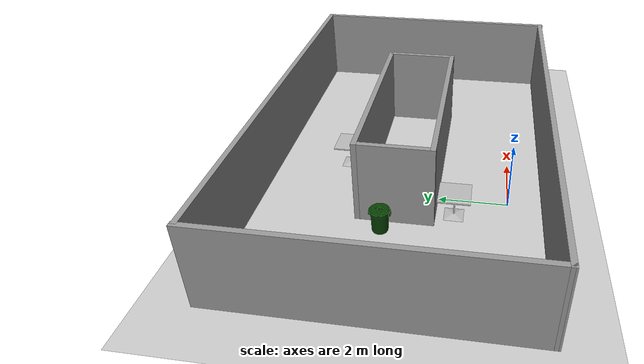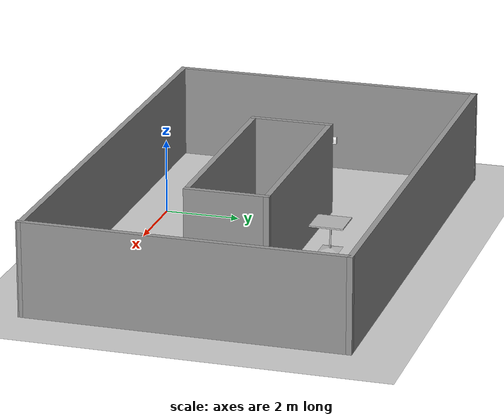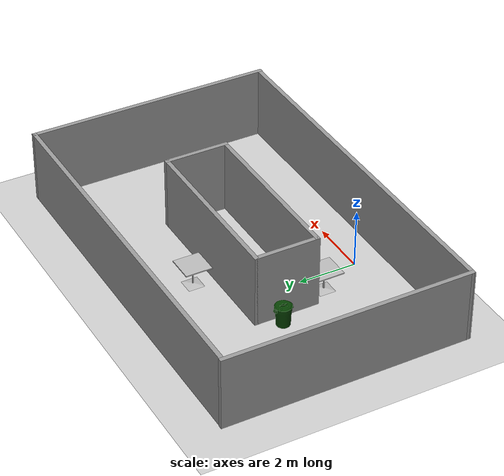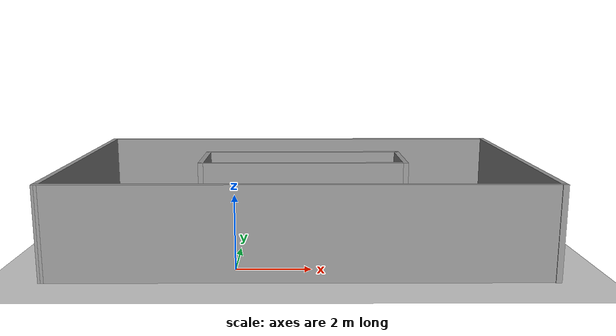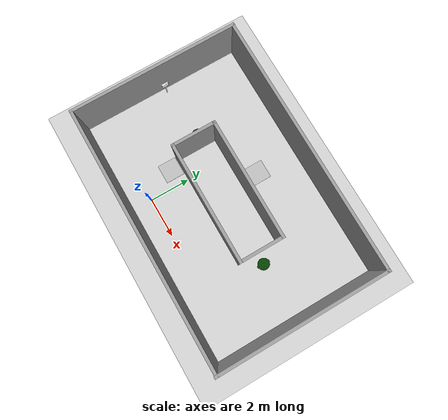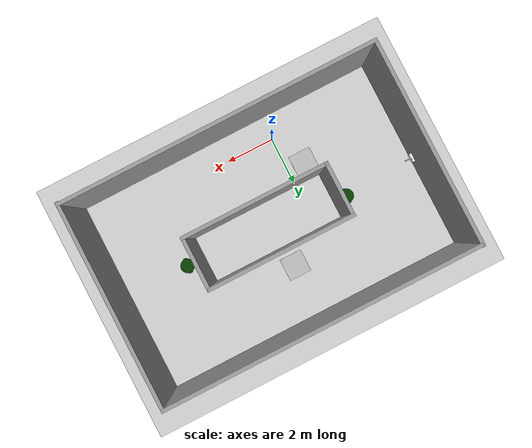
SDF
<sdf version="1.6">
 <world name="default">
  <light name="sun" type="directional">
   <pose>0 0 10 0 -0 0</pose>
   <diffuse>0.8 0.8 0.8 1</diffuse>
   <specular>0.2 0.2 0.2 1</specular>
   <attenuation>
    <range>1000</range>
    <constant>0.9</constant>
    <linear>0.01</linear>
    <quadratic>0.001</quadratic>
   </attenuation>
   <direction>-0.5 0.1 -0.9</direction>
  </light>
  <model name="ground_plane">
   <static>1</static>
   <link name="link">
    <collision name="collision">
     <geometry><plane><normal>0 0 1</normal><size>100 100</size></plane></geometry>
     <surface>
      <contact><collide_bitmask>65535</collide_bitmask></contact>
      <friction><ode><mu>100</mu><mu2>50</mu2></ode></friction>
     </surface>
    </collision>
    <visual name="visual">
     <cast_shadows>0</cast_shadows>
     <geometry><plane><normal>0 0 1</normal><size>100 100</size></plane></geometry>
     <material>
      <script><uri>file://media/materials/scripts/gazebo.material</uri><name>Gazebo/Grey</name></script>
     </material>
    </visual>
   </link>
  </model>
  <gravity>0 0 -9.8</gravity>
  <magnetic_field>6e-06 2.3e-05 -4.2e-05</magnetic_field>
  <atmosphere type="adiabatic"/>
  <physics name="default_physics" default="0" type="ode">
   <max_step_size>0.001</max_step_size>
   <real_time_factor>1</real_time_factor>
   <real_time_update_rate>1000</real_time_update_rate>
  </physics>
  <scene><ambient>0.4 0.4 0.4 1</ambient><background>0.7 0.7 0.7 1</background><shadows>1</shadows></scene>
  <spherical_coordinates>
   <surface_model>EARTH_WGS84</surface_model>
   <latitude_deg>0</latitude_deg>
   <longitude_deg>0</longitude_deg>
   <elevation>0</elevation>
   <heading_deg>0</heading_deg>
  </spherical_coordinates>
  <model name="okay">
   <pose>1.68904 3.10716 0 0 -0 0</pose>
   <link name="Wall_19">
    <collision name="Wall_19_Collision">
     <geometry><box><size>13.0776 0.15 2.5</size></box></geometry>
     <pose>0 0 1.25 0 -0 0</pose>
    </collision>
    <visual name="Wall_19_Visual">
     <pose>0 0 1.25 0 -0 0</pose>
     <geometry><box><size>13.0776 0.15 2.5</size></box></geometry>
     <material>
      <script><uri>file://media/materials/scripts/gazebo.material</uri><name>Gazebo/Grey</name></script>
      <ambient>1 1 1 1</ambient>
     </material>
     <meta><layer>0</layer></meta>
    </visual>
    <pose>0 -4.1597 0 0 -0 0.001178</pose>
   </link>
   <link name="Wall_21">
    <collision name="Wall_21_Collision">
     <geometry><box><size>6 0.15 2.5</size></box></geometry>
     <pose>0 0 1.25 0 -0 0</pose>
    </collision>
    <visual name="Wall_21_Visual">
     <pose>0 0 1.25 0 -0 0</pose>
     <geometry><box><size>6 0.15 2.5</size></box></geometry>
     <material>
      <script><uri>file://media/materials/scripts/gazebo.material</uri><name>Gazebo/Grey</name></script>
      <ambient>1 1 1 1</ambient>
     </material>
     <meta><layer>0</layer></meta>
    </visual>
    <pose>0.104244 -1.01067 0 0 -0 0</pose>
   </link>
   <link name="Wall_23">
    <collision name="Wall_23_Collision">
     <geometry><box><size>8.5 0.15 2.5</size></box></geometry>
     <pose>0 0 1.25 0 -0 0</pose>
    </collision>
    <visual name="Wall_23_Visual">
     <pose>0 0 1.25 0 -0 0</pose>
     <geometry><box><size>8.5 0.15 2.5</size></box></geometry>
     <material>
      <script><uri>file://media/materials/scripts/gazebo.material</uri><name>Gazebo/Grey</name></script>
      <ambient>1 1 1 1</ambient>
     </material>
     <meta><layer>0</layer></meta>
    </visual>
    <pose>6.46375 -0.007678 0 0 -0 1.5708</pose>
   </link>
   <link name="Wall_25">
    <collision name="Wall_25_Collision">
     <geometry><box><size>8.5 0.15 2.5</size></box></geometry>
     <pose>0 0 1.25 0 -0 0</pose>
    </collision>
    <visual name="Wall_25_Visual">
     <pose>0 0 1.25 0 -0 0</pose>
     <geometry><box><size>8.5 0.15 2.5</size></box></geometry>
     <material>
      <script><uri>file://media/materials/scripts/gazebo.material</uri><name>Gazebo/Grey</name></script>
      <ambient>1 1 1 1</ambient>
     </material>
     <meta><layer>0</layer></meta>
    </visual>
    <pose>-6.46375 0.007678 0 0 -0 -1.5708</pose>
   </link>
   <link name="Wall_27">
    <collision name="Wall_27_Collision">
     <geometry><box><size>2.25 0.15 2.5</size></box></geometry>
     <pose>0 0 1.25 0 -0 0</pose>
    </collision>
    <visual name="Wall_27_Visual">
     <pose>0 0 1.25 0 -0 0</pose>
     <geometry><box><size>2.25 0.15 2.5</size></box></geometry>
     <material>
      <script><uri>file://media/materials/scripts/gazebo.material</uri><name>Gazebo/Grey</name></script>
      <ambient>1 1 1 1</ambient>
     </material>
     <meta><layer>0</layer></meta>
    </visual>
    <pose>3.02924 0.039325 0 0 -0 1.5708</pose>
   </link>
   <link name="Wall_28">
    <collision name="Wall_28_Collision">
     <geometry><box><size>6 0.15 2.5</size></box></geometry>
     <pose>0 0 1.25 0 -0 0</pose>
    </collision>
    <visual name="Wall_28_Visual">
     <pose>0 0 1.25 0 -0 0</pose>
     <geometry><box><size>6 0.15 2.5</size></box></geometry>
     <material>
      <script><uri>file://media/materials/scripts/gazebo.material</uri><name>Gazebo/Grey</name></script>
      <ambient>1 1 1 1</ambient>
     </material>
     <meta><layer>0</layer></meta>
    </visual>
    <pose>0.104244 1.08933 0 0 -0 3.14159</pose>
   </link>
   <link name="Wall_29">
    <collision name="Wall_29_Collision">
     <geometry><box><size>2.25 0.15 2.5</size></box></geometry>
     <pose>0 0 1.25 0 -0 0</pose>
    </collision>
    <visual name="Wall_29_Visual">
     <pose>0 0 1.25 0 -0 0</pose>
     <geometry><box><size>2.25 0.15 2.5</size></box></geometry>
     <material>
      <script><uri>file://media/materials/scripts/gazebo.material</uri><name>Gazebo/Grey</name></script>
      <ambient>1 1 1 1</ambient>
     </material>
     <meta><layer>0</layer></meta>
    </visual>
    <pose>-2.82076 0.039325 0 0 -0 -1.5708</pose>
   </link>
   <link name="Wall_31">
    <collision name="Wall_31_Collision">
     <geometry><box><size>13 0.15 2.5</size></box></geometry>
     <pose>0 0 1.25 0 -0 0</pose>
    </collision>
    <visual name="Wall_31_Visual">
     <pose>0 0 1.25 0 -0 0</pose>
     <geometry><box><size>13 0.15 2.5</size></box></geometry>
     <material>
      <script><uri>file://media/materials/scripts/gazebo.material</uri><name>Gazebo/Grey</name></script>
      <ambient>1 1 1 1</ambient>
     </material>
     <meta><layer>0</layer></meta>
    </visual>
    <pose>0.038751 4.16732 0 0 -0 3.14159</pose>
   </link>
   <static>1</static>
  </model>
  <model name="first_2015_trash_can">
   <link name="link">
    <inertial>
     <pose>0 0 0.3683 0 -0 0</pose>
     <mass>4.83076</mass>
     <inertia>
      <ixx>0.281534</ixx>
      <ixy>0</ixy>
      <ixz>0</ixz>
      <iyy>0.281534</iyy>
      <iyz>0</iyz>
      <izz>0.126223</izz>
     </inertia>
    </inertial>
    <visual name="visual">
     <geometry><mesh><uri>model://first_2015_trash_can/meshes/trash_can.dae</uri></mesh></geometry>
    </visual>
    <collision name="collision">
     <geometry><mesh><uri>model://first_2015_trash_can/meshes/trash_can.dae</uri></mesh></geometry>
    </collision>
   </link>
   <pose>5.32955 3.03822 -2e-06 1e-05 8e-06 -0.000367</pose>
  </model>
  <model name="Mailbox">
   <link name="link">
    <collision name="collision">
     <geometry><mesh><uri>model://mailbox/meshes/mailbox.dae</uri></mesh></geometry>
    </collision>
    <visual name="visual">
     <geometry><mesh><uri>model://mailbox/meshes/mailbox.dae</uri></mesh></geometry>
     <material>
      <script>
       <uri>model://mailbox/materials/scripts</uri>
       <uri>model://mailbox/materials/textures</uri>
       <name>Mailbox/Diffuse</name>
      </script>
     </material>
    </visual>
    <inertial>
     <inertia><ixx>1</ixx><ixy>0</ixy><ixz>0</ixz><iyy>1</iyy><iyz>0</iyz><izz>1</izz></inertia>
     <mass>1</mass>
    </inertial>
   </link>
   <pose>-4.48073 3.31544 -1e-05 -2e-06 -2e-06 0</pose>
  </model>
  <model name="first_2015_trash_can_0">
   <link name="link">
    <inertial>
     <pose>0 0 0.3683 0 -0 0</pose>
     <mass>4.83076</mass>
     <inertia>
      <ixx>0.281534</ixx>
      <ixy>0</ixy>
      <ixz>0</ixz>
      <iyy>0.281534</iyy>
      <iyz>0</iyz>
      <izz>0.126223</izz>
     </inertia>
    </inertial>
    <visual name="visual">
     <geometry><mesh><uri>model://first_2015_trash_can/meshes/trash_can.dae</uri></mesh></geometry>
    </visual>
    <collision name="collision">
     <geometry><mesh><uri>model://first_2015_trash_can/meshes/trash_can.dae</uri></mesh></geometry>
    </collision>
   </link>
   <pose>-1.54983 3.47377 -2e-06 9e-06 8e-06 -0.000338</pose>
  </model>
  <model name="cafe_table_0">
   <static>1</static>
   <link name="link">
    <collision name="surface">
     <pose>0 0 0.755 0 -0 0</pose>
     <geometry><box><size>0.913 0.913 0.04</size></box></geometry>
    </collision>
    <collision name="column">
     <pose>0 0 0.37 0 -0 0</pose>
     <geometry><box><size>0.042 0.042 0.74</size></box></geometry>
    </collision>
    <collision name="base">
     <pose>0 0 0.02 0 -0 0</pose>
     <geometry><box><size>0.56 0.56 0.04</size></box></geometry>
    </collision>
    <visual name="visual">
     <geometry><mesh><uri>model://cafe_table/meshes/cafe_table.dae</uri></mesh></geometry>
    </visual>
   </link>
   <pose>-0.642708 1.51109 0 0 -0 0</pose>
  </model>
  <model name="cafe_table">
   <static>1</static>
   <link name="link">
    <collision name="surface">
     <pose>0 0 0.755 0 -0 0</pose>
     <geometry><box><size>0.913 0.913 0.04</size></box></geometry>
    </collision>
    <collision name="column">
     <pose>0 0 0.37 0 -0 0</pose>
     <geometry><box><size>0.042 0.042 0.74</size></box></geometry>
    </collision>
    <collision name="base">
     <pose>0 0 0.02 0 -0 0</pose>
     <geometry><box><size>0.56 0.56 0.04</size></box></geometry>
    </collision>
    <visual name="visual">
     <geometry><mesh><uri>model://cafe_table/meshes/cafe_table.dae</uri></mesh></geometry>
    </visual>
   </link>
   <pose>1.52528 4.96924 0 0 -0 0</pose>
  </model>
 </world>
</sdf>
